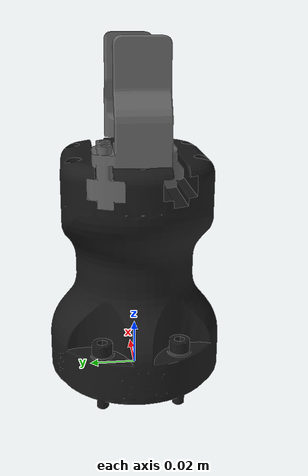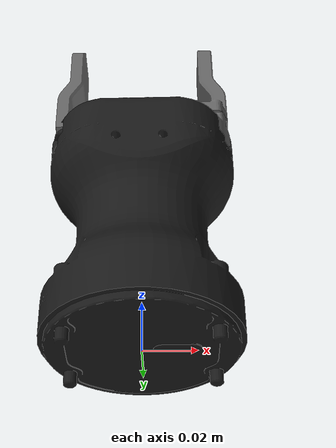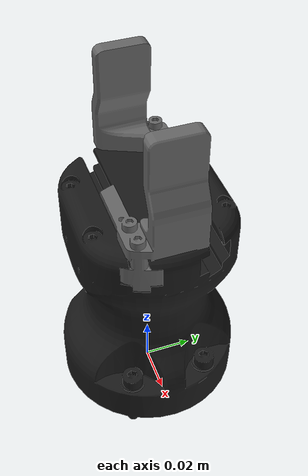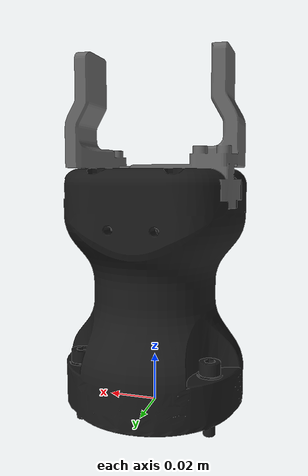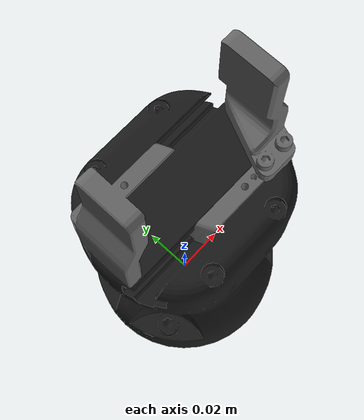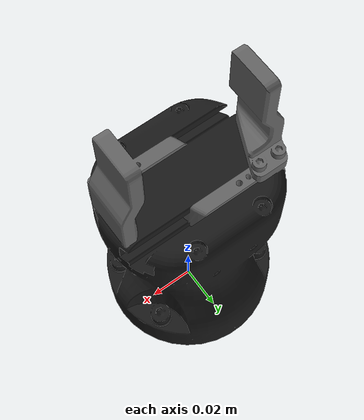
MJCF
<mujoco model="robotiq_hande">
    <compiler angle="radian" meshdir="hande/assets/stl/" />
    <size njmax="500" nconmax="100" />
    <asset>
        <mesh name="hand-e" file="hand-e.stl" />
        <mesh name="finger_1" file="finger_1.stl" />
        <mesh name="finger_2" file="finger_2.stl" />
    </asset>
    <worldbody>
        <geom type="mesh" contype="0" conaffinity="0" group="1" rgba="0.1 0.1 0.1 1" mesh="hand-e" />
        <geom type="mesh" rgba="0.1 0.1 0.1 1" mesh="hand-e" />
        <body name="hande_left_finger" pos="0 0 0.099">
            <inertial pos="0.02262 -0.00759 0.00738" quat="0.871952 0.0369732 -0.211073 0.440205" mass="0.03804" diaginertia="1.22763e-05 1.22763e-05 1.22763e-05" />
            <joint name="hande_left_finger_joint" pos="0 0 0" axis="-1 0 0" type="slide" limited="true" range="0 0.025" />
            <geom type="mesh" contype="0" conaffinity="0" group="1" rgba="0.4 0.4 0.4 1" mesh="finger_1" />
            <geom type="mesh" rgba="0.4 0.4 0.4 1" mesh="finger_1" />
        </body>
        <body name="hande_right_finger" pos="0 0 0.099">
            <inertial pos="-0.02262 0.00759 0.00738" quat="0.871952 -0.0369732 0.211073 0.440205" mass="0.03804" diaginertia="1.22763e-05 1.22763e-05 1.22763e-05" />
            <joint name="hande_right_finger_joint" pos="0 0 0" axis="1 0 0" type="slide" limited="true" range="0 0.025" />
            <geom type="mesh" contype="0" conaffinity="0" group="1" rgba="0.4 0.4 0.4 1" mesh="finger_2" />
            <geom type="mesh" rgba="0.4 0.4 0.4 1" mesh="finger_2" />
        </body>
    </worldbody>
</mujoco>
